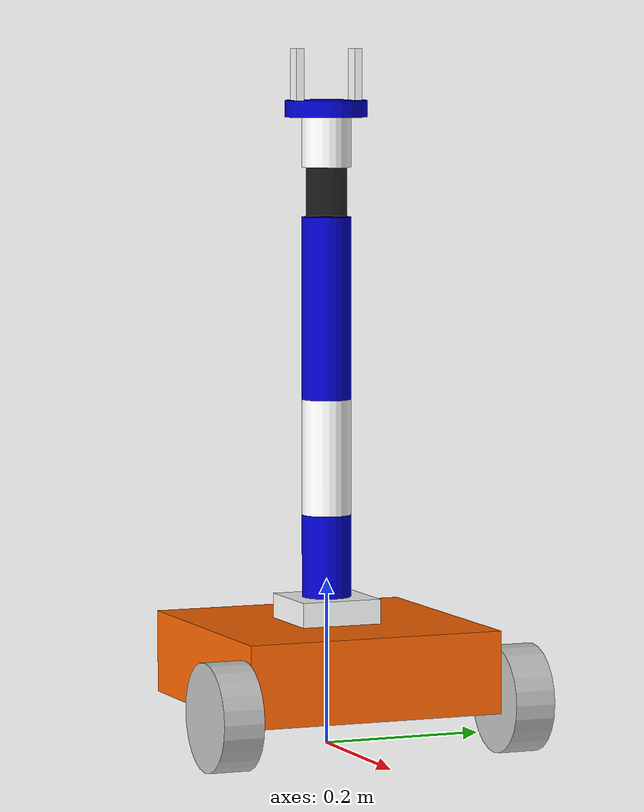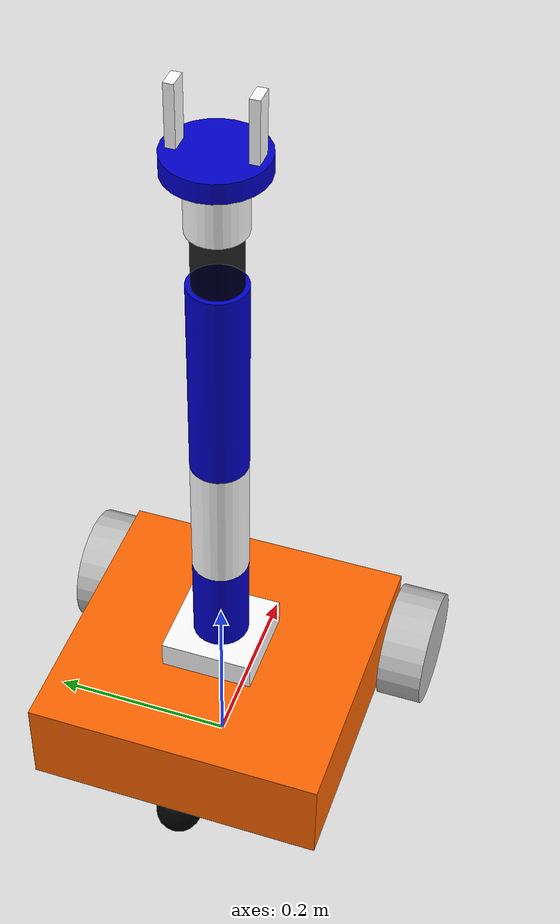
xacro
<?xml version="1.0"?>
<robot name="six_arm"
    xmlns:xacro="http://www.ros.org/wiki/xacro">
    <!-- 无插件 -->

    <xacro:include filename="$(find mybot_description)/urdf/large_base.xacro" />
    <xacro:include filename="$(find mybot_description)/urdf/arm.xacro" />

    <!-- arm -->
    <xacro:property name="arm_offset_x" value="0.0" />
    <xacro:property name="arm_offset_y" value="0" />
    <xacro:property name="arm_offset_z" value="${base_height/2+0.01}" />

    <joint name="connect_joint" type="fixed">
        <origin xyz="${arm_offset_x} ${arm_offset_y} ${arm_offset_z}" rpy=" 0 0 0" />
        <parent link="base_link" />
        <child link="arm_base_link" />
    </joint>

</robot>

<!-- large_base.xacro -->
<robot name="originbot"
    xmlns:xacro="http://www.ros.org/wiki/xacro">
    <!-- 大号机器人模型 -->
    <!-- PROPERTY LIST -->
    <xacro:property name="M_PI" value="3.1415926" />
    <xacro:property name="base_mass" value="4" />

    <xacro:property name="base_width" value="0.320" />
    <xacro:property name="base_length" value="0.320" />
    <xacro:property name="base_height" value="0.1" />

    <!-- 轮子 -->
    <xacro:property name="wheel_mass" value="0.4" />
    <xacro:property name="wheel_radius" value="0.065" />
    <xacro:property name="wheel_length" value="0.050" />

    <!-- base_length/2 = 0.16; x偏移-0.02-->
    <xacro:property name="wheel_joint_x" value="${base_length/2 - 0.02}" />
    <!-- (base_width+wheel_length)/2 -->
    <xacro:property name="wheel_joint_y" value="${(base_width+wheel_length)/2}" />
    <!-- base_height/2 = 0.05;向上偏移一点（-0.015）  -->
    <xacro:property name="wheel_joint_z" value="${base_height/2 - 0.015}" />

    <!-- 支撑轮 -->
    <xacro:property name="caster_mass" value="0.4" />
    <!-- 计算中心到地面高度，再减去底盘得到底盘到地面高度:
    wheel_joint_z + wheel_radius  - base_height/2; -->
    <xacro:property name="caster_radius" value="${(wheel_joint_z + wheel_radius - base_height/2)/2}" />
    <!-- 与前轮对称 -->
    <xacro:property name="caster_joint_x" value="${wheel_joint_x}" />

    <material name="yellow">
        <color rgba="1 0.4 0 1" />
    </material>
    <material name="black">
        <color rgba="0 0 0 0.95" />
    </material>
    <material name="gray">
        <color rgba="0.75 0.75 0.75 1" />
    </material>

    <!-- Macro for inertia matrix -->

    <!-- 球面惯性矩阵 -->
    <xacro:macro name="sphere_inertial_matrix" params="m r">
        <inertial>
            <mass value="${m}" />
            <inertia ixx="${2*m*r*r/5}" ixy="0" ixz="0" iyy="${2*m*r*r/5}" iyz="0"
                izz="${2*m*r*r/5}" />
        </inertial>
    </xacro:macro>

    <!-- 圆柱惯性矩阵 -->
    <xacro:macro name="cylinder_inertial_matrix" params="m r h">
        <inertial>
            <mass value="${m}" />
            <inertia ixx="${m*(3*r*r+h*h)/12}" ixy="0" ixz="0" iyy="${m*(3*r*r+h*h)/12}" iyz="0"
                izz="${m*r*r/2}" />
        </inertial>
    </xacro:macro>

    <!-- 方块惯性矩阵 -->
    <xacro:macro name="box_inertial_matrix" params="m l w h">
        <inertial>
            <mass value="${m}" />
            <inertia ixx="${m*(h*h + l*l)/12}" ixy="0" ixz="0" iyy="${m*(w*w + l*l)/12}" iyz="0"
                izz="${m*(w*w + h*h)/12}" />
        </inertial>
    </xacro:macro>

    <!-- Macro for robot 轮子 -->
    <xacro:macro name="wheel" params="prefix reflect">
        <joint name="${prefix}_wheel_joint" type="continuous">
            <origin xyz="${wheel_joint_x} ${reflect*wheel_joint_y} ${-wheel_joint_z}"
                rpy="0 0 0" />
            <parent link="base_link" />
            <child link="${prefix}_wheel_link" />
            <axis xyz="0 1 0" />
        </joint>

        <link name="${prefix}_wheel_link">
            <visual>
                <origin xyz="0 0 0" rpy="${M_PI/2} 0 0" />
                <geometry>
                    <cylinder radius="${wheel_radius}" length="${wheel_length}" />
                </geometry>
                <material name="gray" />
            </visual>
            <collision>
                <origin xyz="0 0 0" rpy="${M_PI/2} 0 0" />
                <geometry>
                    <cylinder radius="${wheel_radius}" length="${wheel_length}" />
                </geometry>
            </collision>
            <xacro:cylinder_inertial_matrix m="${wheel_mass}" r="${wheel_radius}"
                h="${wheel_length}" />
        </link>

    </xacro:macro>

    <!-- Macro for robot 支撑轮 -->
    <xacro:macro name="caster" params="prefix reflect">
        <joint name="${prefix}_caster_joint" type="fixed">
            <origin xyz="${reflect*caster_joint_x} 0 ${-(base_height/2 + caster_radius)}"
                rpy="0 0 0" />
            <parent link="base_link" />
            <child link="${prefix}_caster_link" />
        </joint>

        <link name="${prefix}_caster_link">
            <visual>
                <origin xyz="0 0 0" rpy="0 0 0" />
                <geometry>
                    <sphere radius="${caster_radius}" />
                </geometry>
                <material name="black" />
            </visual>
            <collision>
                <origin xyz="0 0 0" rpy="0 0 0" />
                <geometry>
                    <sphere radius="${caster_radius}" />
                </geometry>
            </collision>
            <xacro:sphere_inertial_matrix m="${caster_mass}" r="${caster_radius}" />
        </link>

    </xacro:macro>

    <link name="base_footprint">
        <visual>
            <origin xyz="0 0 0" rpy="0 0 0" />
            <geometry>
                <box size="0.001 0.001 0.001" />
            </geometry>
        </visual>
    </link>

    <joint name="base_footprint_joint" type="fixed">
        <origin xyz="0 0 ${base_height/2 + caster_radius*2}" rpy="0 0 0" />
        <parent link="base_footprint" />
        <child link="base_link" />
    </joint>

    <link name="base_link">
        <visual>
            <origin xyz=" 0 0 0" rpy="0 0 0" />
            <geometry>
                <box size="${base_length} ${base_width} ${base_height}" />
            </geometry>
            <material name="yellow" />
        </visual>
        <xacro:box_inertial_matrix m="${base_mass}" l="${base_length}" w="${base_width}"
            h="${base_height}" />
    </link>

    <xacro:wheel prefix="left" reflect="1" />
    <xacro:wheel prefix="right" reflect="-1" />

    <xacro:caster prefix="back" reflect="-1" />

</robot>

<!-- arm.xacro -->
<robot name="six_arm"
    xmlns:xacro="http://www.ros.org/wiki/xacro">
    <!-- 定义一些颜色 -->
    <material name="Blue">
        <color rgba="0 0 0.8 1" />
    </material>

    <material name="Black">
        <color rgba="0 0 0 0.85" />
    </material>

    <material name="White">
        <color rgba="1 1 1 1" />
    </material>

    <!-- 常量 -->
    <xacro:property name="M_PI" value="3.1415926" />

    <!-- 连杆半径和长度 -->
    <!-- link1 -->
    <xacro:property name="link1_rad" value="0.03" />
    <xacro:property name="link1_len" value="0.1" />
    <!-- link2 -->
    <xacro:property name="link2_rad" value="0.03" />
    <xacro:property name="link2_len" value="0.14" />
    <!-- link3 -->
    <xacro:property name="link3_rad" value="0.03" />
    <xacro:property name="link3_len" value="0.22" />
    <!-- link4 -->
    <xacro:property name="link4_rad" value="0.025" />
    <xacro:property name="link4_len" value="0.06" />
    <!-- link5 -->
    <xacro:property name="link5_rad" value="0.03" />
    <xacro:property name="link5_len" value="0.06" />
    <!-- link6 -->
    <xacro:property name="link6_rad" value="0.05" />
    <xacro:property name="link6_len" value="0.02" />
    <!-- 夹爪 长宽高-->
    <!-- gripper -->
    <xacro:property name="gripper_l" value="0.08" />
    <xacro:property name="gripper_w" value="0.01" />
    <xacro:property name="gripper_h" value="0.02" />
    <!-- 夹爪安装距离参数0~1 -->
    <xacro:property name="gripper_offset" value="0.75" />
    <xacro:property name="gripper_offset_h" value="0.002" />
    <!-- 底座长宽高 -->
    <!-- base -->
    <xacro:property name="base_l" value="0.1" />
    <xacro:property name="base_w" value="0.1" />
    <xacro:property name="base_h" value="0.04" />

    <!-- 惯性矩阵 -->
    <xacro:macro name="inertial_matrix" params="m">
        <inertial>
            <mass value="${m}" />
            <inertia ixx="0.0001" ixy="0" ixz="0" iyy="0.0001" iyz="0" izz="0.0001" />
        </inertial>
    </xacro:macro>

    <!-- Macro for inertia matrix -->
    <xacro:macro name="sphere_inertial_matrix" params="m r">
        <inertial>
            <mass value="${m}" />
            <inertia ixx="${2*m*r*r/5}" ixy="0" ixz="0"
                iyy="${2*m*r*r/5}" iyz="0"
                izz="${2*m*r*r/5}" />
        </inertial>
    </xacro:macro>

    <xacro:macro name="cylinder_inertial_matrix" params="m r h">
        <inertial>
            <mass value="${m}" />
            <inertia ixx="${m*(3*r*r+h*h)/12}" ixy="0" ixz="0"
                iyy="${m*(3*r*r+h*h)/12}" iyz="0"
                izz="${m*r*r/2}" />
        </inertial>
    </xacro:macro>

    <xacro:macro name="box_inertial_matrix" params="m l w h">
        <inertial>
            <mass value="${m}" />
            <inertia ixx="${m*(h*h + l*l)/12}" ixy="0" ixz="0"
                iyy="${m*(w*w + l*l)/12}" iyz="0"
                izz="${m*(w*w + h*h)/12}" />
        </inertial>
    </xacro:macro>

    <!-- 底座 -->
    <link name="arm_base_link">
        <visual>
            <origin xyz="0 0 0" rpy="0 0 0" />
            <geometry>
                <box size="${base_l} ${base_w} ${base_h}" />
            </geometry>
            <material name="White" />
        </visual>
        <collision>
            <geometry>
                <box size="${base_l} ${base_w} ${base_h}" />
            </geometry>
        </collision>
        <xacro:inertial_matrix m="1" />
    </link>

    <!-- joint1 -->
    <joint name="joint1" type="revolute">
        <parent link="arm_base_link" />
        <child link="link1" />
        <origin xyz="0 0 ${base_h / 2 + link1_len / 2}" rpy="0 0 0" />
        <axis xyz="0 0 1" />
        <limit lower="-3.14" upper="3.14" effort="300" velocity="1.0" />
        <joint_properties damping="50" friction="1" />
    </joint>

    <!-- link1 -->
    <link name="link1">
        <visual>
            <geometry>
                <cylinder radius="${link1_rad}" length="${link1_len}" />
            </geometry>
            <material name="Blue" />
        </visual>
        <collision>
            <geometry>
                <cylinder radius="${link1_rad}" length="${link1_len}" />
            </geometry>
        </collision>
        <xacro:inertial_matrix m="0.1" />
    </link>

    <!-- link2 -->
    <link name="link2">
        <visual>
            <origin xyz="0 0 ${link2_len/2}" rpy="0 0 0" />
            <geometry>
                <cylinder radius="${link2_rad}" length="${link2_len}" />
            </geometry>
            <material name="White" />
        </visual>
        <collision>
            <origin xyz="0 0 ${link2_len/2}" rpy="0 0 0" />
            <geometry>
                <cylinder radius="${link2_rad}" length="${link2_len}" />
            </geometry>
        </collision>
        <xacro:inertial_matrix m="0.1" />
    </link>

    <!-- joint2 -->
    <joint name="joint2" type="revolute">
        <parent link="link1" />
        <child link="link2" />
        <origin xyz="0 0 ${link1_len/2}" rpy="0 0 0" />
        <axis xyz="0 1 0" />
        <limit effort="300" velocity="1.0" lower="-2.35" upper="2.35" />
        <joint_properties damping="50" friction="1" />
    </joint>

    <!-- link3 -->
    <link name="link3">
        <visual>
            <origin xyz="0 0 ${link3_len/2}" rpy="0 0 0" />
            <geometry>
                <cylinder radius="${link3_rad}" length="${link3_len}" />
            </geometry>
            <material name="Blue" />
        </visual>
        <collision>
            <origin xyz="0 0 ${link3_len/2}" rpy="0 0 0" />
            <geometry>
                <cylinder radius="${link3_rad}" length="${link3_len}" />
            </geometry>
        </collision>
        <xacro:inertial_matrix m="0.1" />
    </link>

    <!-- joint3 -->
    <joint name="joint3" type="revolute">
        <parent link="link2" />
        <child link="link3" />
        <origin xyz="0 0 ${link2_len}" rpy="0 0 0" />
        <axis xyz="0 1 0" />
        <limit effort="300" velocity="1.0" lower="-2.62" upper="2.62" />

        <joint_properties damping="50" friction="1" />
    </joint>

    <!-- link4 -->
    <link name="link4">
        <visual>
            <origin xyz="0 0 ${link4_len/2}" rpy="0 0 0" />
            <geometry>
                <cylinder radius="${link4_rad}" length="${link4_len}" />
            </geometry>
            <material name="Black" />
        </visual>
        <collision>
            <origin xyz="0 0 ${link4_len/2}" rpy="0 0 0" />
            <geometry>
                <cylinder radius="${link4_rad}" length="${link4_len}" />
            </geometry>
        </collision>
        <xacro:inertial_matrix m="0.1" />
    </link>
    <!-- joint4 -->
    <joint name="joint4" type="revolute">
        <parent link="link3" />
        <child link="link4" />
        <origin xyz="0 0 ${link3_len}" rpy="0 0 0" />
        <axis xyz="0 0 1" />
        <limit lower="-3.14" upper="3.14" effort="300" velocity="1.0" />
        <joint_properties damping="50" friction="1" />
    </joint>

    <!-- link5 -->
    <link name="link5">
        <visual>
            <origin xyz="0 0 ${link5_len/2}" rpy="0 0 0" />
            <geometry>
                <cylinder radius="${link5_rad}" length="${link5_len}" />
            </geometry>
            <material name="White" />
        </visual>
        <collision>
            <origin xyz="0 0 ${link5_len/2}" rpy="0 0 0" />
            <geometry>
                <cylinder radius="${link5_rad}" length="${link5_len}" />
            </geometry>
        </collision>
        <xacro:inertial_matrix m="0.1" />
    </link>

    <!-- joint5 -->
    <joint name="joint5" type="revolute">
        <parent link="link4" />
        <child link="link5" />
        <origin xyz="0 0 ${link4_len}" rpy="0 0 0" />
        <axis xyz="0 -1 0" />
        <limit effort="300" velocity="1.0" lower="-2.04" upper="2.04" />

        <joint_properties damping="50" friction="1" />
    </joint>

    <!-- link6 -->
    <link name="link6">
        <visual>
            <origin xyz="0 0 ${link6_len/2}" rpy="0 0 0" />
            <geometry>
                <cylinder radius="${link6_rad}" length="${link6_len}" />
            </geometry>
            <material name="Blue" />
        </visual>
        <collision>
            <origin xyz="0 0 ${link6_len/2}" rpy="0 0 0" />
            <geometry>
                <cylinder radius="${link6_rad}" length="${link6_len}" />
            </geometry>
        </collision>
        <xacro:inertial_matrix m="0.1" />
    </link>

    <!-- joint6 -->
    <joint name="joint6" type="revolute">
        <parent link="link5" />
        <child link="link6" />
        <origin xyz="0 0 ${link5_len}" rpy="0 0 0" />
        <axis xyz="0 0 1" />
        <limit lower="-3.14" upper="3.14" effort="300" velocity="1.0" />
        <joint_properties damping="50" friction="1" />
    </joint>

    <!-- 夹爪 -->
    <xacro:macro name="gripper_finger_link" params="num">
        <link name="gripper_finger_link${num}">
            <visual>
                <geometry>
                    <box size="${gripper_l} ${gripper_w} ${gripper_h}" />
                </geometry>
                <material name="White" />
            </visual>
            <collision>
                <geometry>
                    <box size="${gripper_l} ${gripper_w} ${gripper_h}" />
                </geometry>
            </collision>
            <xacro:inertial_matrix m="0.01" />
        </link>
    </xacro:macro>

    <xacro:gripper_finger_link num="1" />
    <xacro:gripper_finger_link num="2" />

    <joint name="finger_joint1" type="prismatic">
        <parent link="link6" />
        <child link="gripper_finger_link1" />
        <origin xyz="0 -${link6_rad *gripper_offset} ${gripper_h*2+gripper_offset_h}"
            rpy="0 ${M_PI/2} 0" />
        <axis xyz="0 1 0" />
        <limit effort="100" lower="0" upper="${link6_rad+gripper_w}" velocity="1.0" />
        <dynamics damping="50" friction="1" />
    </joint>

    <joint name="finger_joint2" type="fixed">
        <parent link="link6" />
        <child link="gripper_finger_link2" />
        <origin xyz="0 ${link6_rad *gripper_offset} ${gripper_h*2+gripper_offset_h}"
            rpy="0 ${M_PI/2} 0" />
    </joint>

    <!-- Grasping frame -->
    <link name="grasping_frame" />

    <joint name="grasping_frame_joint" type="fixed">
        <parent link="link6" />
        <child link="grasping_frame" />
        <origin xyz="0 0 0" rpy="0 0 0" />
    </joint>
</robot>
